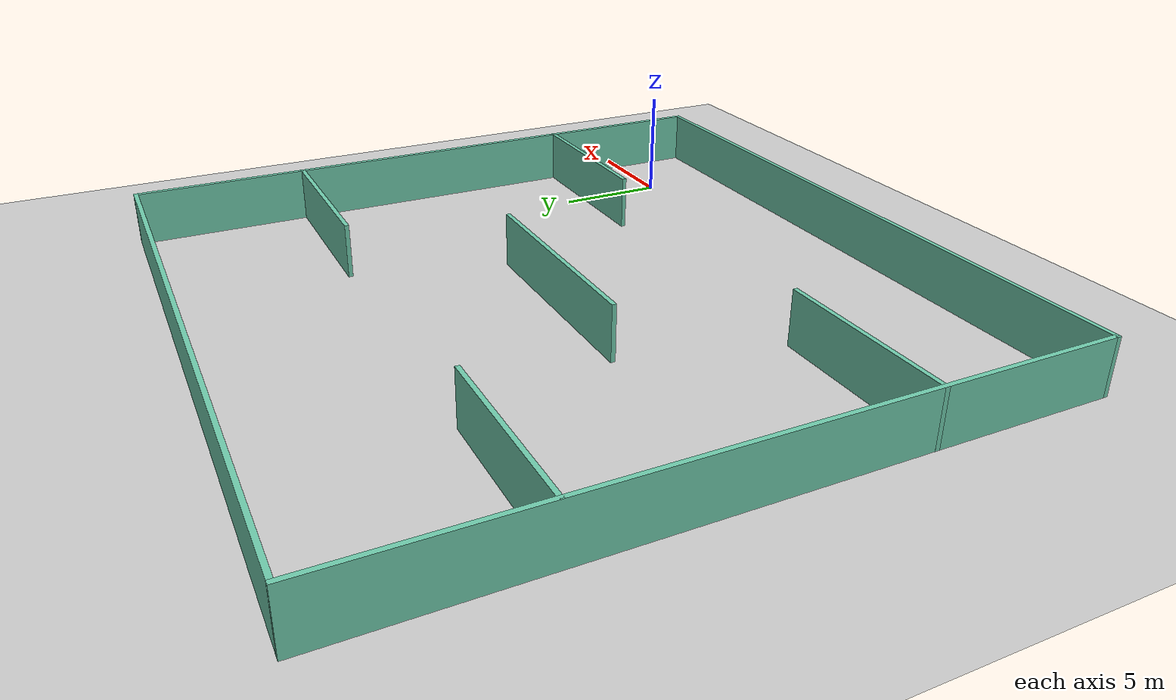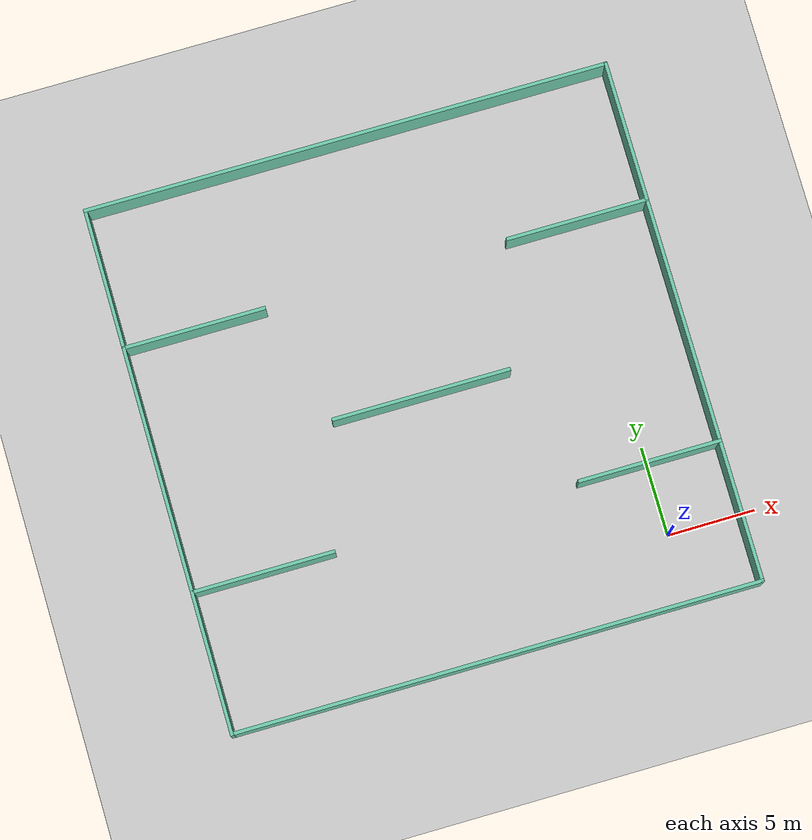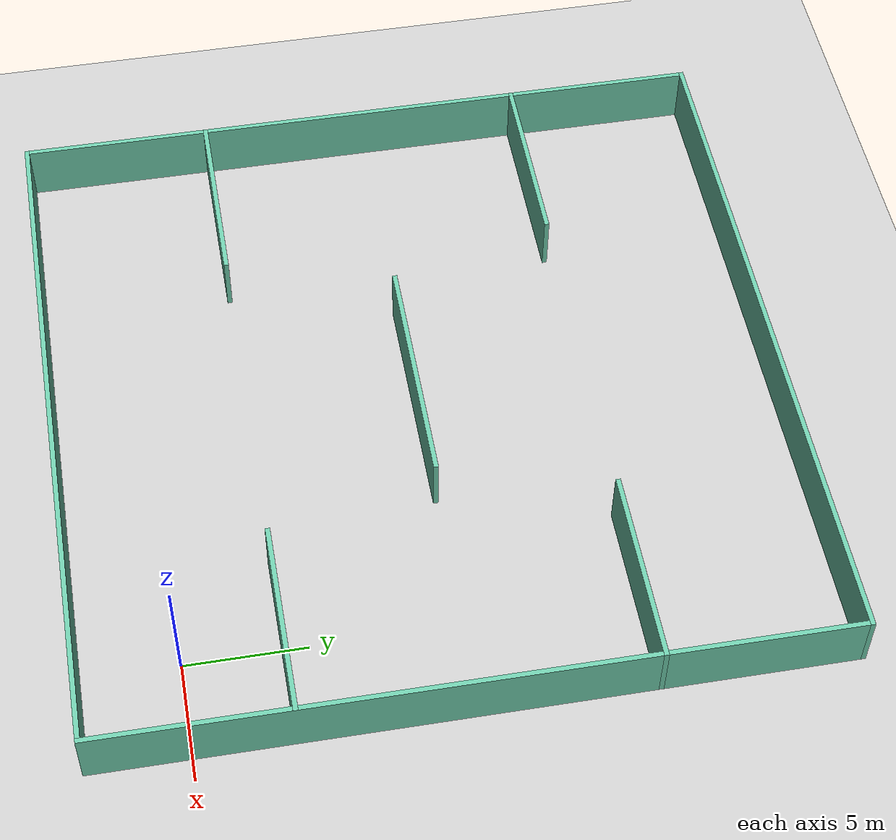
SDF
<sdf version="1.7">
 <world name="default">
  <light name="sun" type="directional">
   <pose>0 0 10 0 -0 0</pose>
   <diffuse>0.8 0.8 0.8 1</diffuse>
   <specular>0.2 0.2 0.2 1</specular>
   <attenuation>
    <range>1000</range>
    <constant>0.9</constant>
    <linear>0.01</linear>
    <quadratic>0.001</quadratic>
   </attenuation>
   <direction>-0.5 0.1 -0.9</direction>
   <spot><inner_angle>0</inner_angle><outer_angle>0</outer_angle><falloff>0</falloff></spot>
  </light>
  <model name="ground_plane">
   <static>1</static>
   <link name="link">
    <collision name="collision">
     <geometry><plane><normal>0 0 1</normal><size>100 100</size></plane></geometry>
     <surface>
      <contact><collide_bitmask>65535</collide_bitmask></contact>
      <friction><ode><mu>100</mu><mu2>50</mu2></ode></friction>
     </surface>
    </collision>
    <visual name="visual">
     <cast_shadows>0</cast_shadows>
     <geometry><plane><normal>0 0 1</normal><size>100 100</size></plane></geometry>
     <material>
      <script><uri>file://media/materials/scripts/gazebo.material</uri><name>Gazebo/Grey</name></script>
     </material>
    </visual>
   </link>
  </model>
  <gravity>0 0 -9.8</gravity>
  <magnetic_field>6e-06 2.3e-05 -4.2e-05</magnetic_field>
  <atmosphere type="adiabatic"/>
  <physics type="ode">
   <max_step_size>0.001</max_step_size>
   <real_time_factor>1</real_time_factor>
   <real_time_update_rate>1000</real_time_update_rate>
  </physics>
  <scene><ambient>0.4 0.4 0.4 1</ambient><background>0.7 0.7 0.7 1</background><shadows>1</shadows></scene>
  <spherical_coordinates>
   <surface_model>EARTH_WGS84</surface_model>
   <latitude_deg>0</latitude_deg>
   <longitude_deg>0</longitude_deg>
   <elevation>0</elevation>
   <heading_deg>0</heading_deg>
  </spherical_coordinates>
  <model name="new_sim_world">
   <pose>-11 11 0 0 -0 0</pose>
   <link name="Wall_10">
    <collision name="Wall_10_Collision">
     <geometry><box><size>8.2 0.2 2.5</size></box></geometry>
     <pose>0 0 1.25 0 -0 0</pose>
    </collision>
    <visual name="Wall_10_Visual">
     <pose>0 0 1.25 0 -0 0</pose>
     <geometry><box><size>8.2 0.2 2.5</size></box></geometry>
     <material>
      <script><uri>file://media/materials/scripts/gazebo.material</uri><name>Gazebo/Grey</name></script>
      <ambient>0.435294 0.796078 0.67451 1</ambient>
     </material>
     <meta><layer>0</layer></meta>
    </visual>
    <pose>-11 -7 0 0 -0 0</pose>
   </link>
   <link name="Wall_12">
    <collision name="Wall_12_Collision">
     <geometry><box><size>8.2 0.2 2.5</size></box></geometry>
     <pose>0 0 1.25 0 -0 0</pose>
    </collision>
    <visual name="Wall_12_Visual">
     <pose>0 0 1.25 0 -0 0</pose>
     <geometry><box><size>8.2 0.2 2.5</size></box></geometry>
     <material>
      <script><uri>file://media/materials/scripts/gazebo.material</uri><name>Gazebo/Grey</name></script>
      <ambient>0.435294 0.796078 0.67451 1</ambient>
     </material>
     <meta><layer>0</layer></meta>
    </visual>
    <pose>-11 7 0 0 -0 0</pose>
   </link>
   <link name="Wall_14">
    <collision name="Wall_14_Collision">
     <geometry><box><size>8.2 0.2 2.5</size></box></geometry>
     <pose>0 0 1.25 0 -0 0</pose>
    </collision>
    <visual name="Wall_14_Visual">
     <pose>0 0 1.25 0 -0 0</pose>
     <geometry><box><size>8.2 0.2 2.5</size></box></geometry>
     <material>
      <script><uri>file://media/materials/scripts/gazebo.material</uri><name>Gazebo/Grey</name></script>
      <ambient>0.435294 0.796078 0.67451 1</ambient>
     </material>
     <meta><layer>0</layer></meta>
    </visual>
    <pose>11 7 0 0 -0 3.14159</pose>
   </link>
   <link name="Wall_16">
    <collision name="Wall_16_Collision">
     <geometry><box><size>10.2 0.2 2.5</size></box></geometry>
     <pose>0 0 1.25 0 -0 0</pose>
    </collision>
    <visual name="Wall_16_Visual">
     <pose>0 0 1.25 0 -0 0</pose>
     <geometry><box><size>10.2 0.2 2.5</size></box></geometry>
     <material>
      <script><uri>file://media/materials/scripts/gazebo.material</uri><name>Gazebo/Grey</name></script>
      <ambient>0.435294 0.796078 0.67451 1</ambient>
     </material>
     <meta><layer>0</layer></meta>
    </visual>
    <pose>0 0 0 0 -0 3.14159</pose>
   </link>
   <link name="Wall_2">
    <collision name="Wall_2_Collision">
     <geometry><box><size>30.2 0.2 2.5</size></box></geometry>
     <pose>0 0 1.25 0 -0 0</pose>
    </collision>
    <visual name="Wall_2_Visual">
     <pose>0 0 1.25 0 -0 0</pose>
     <geometry><box><size>30.2 0.2 2.5</size></box></geometry>
     <material>
      <script><uri>file://media/materials/scripts/gazebo.material</uri><name>Gazebo/Grey</name></script>
      <ambient>0.435294 0.796078 0.67451 1</ambient>
     </material>
     <meta><layer>0</layer></meta>
    </visual>
    <pose>0 -15 0 0 -0 3.14159</pose>
   </link>
   <link name="Wall_3">
    <collision name="Wall_3_Collision">
     <geometry><box><size>30.2 0.2 2.5</size></box></geometry>
     <pose>0 0 1.25 0 -0 0</pose>
    </collision>
    <visual name="Wall_3_Visual">
     <pose>0 0 1.25 0 -0 0</pose>
     <geometry><box><size>30.2 0.2 2.5</size></box></geometry>
     <material>
      <script><uri>file://media/materials/scripts/gazebo.material</uri><name>Gazebo/Grey</name></script>
      <ambient>0.435294 0.796078 0.67451 1</ambient>
     </material>
     <meta><layer>0</layer></meta>
    </visual>
    <pose>-15 0 0 0 -0 1.5708</pose>
   </link>
   <link name="Wall_4">
    <collision name="Wall_4_Collision">
     <geometry><box><size>30.2 0.2 2.5</size></box></geometry>
     <pose>0 0 1.25 0 -0 0</pose>
    </collision>
    <visual name="Wall_4_Visual">
     <pose>0 0 1.25 0 -0 0</pose>
     <geometry><box><size>30.2 0.2 2.5</size></box></geometry>
     <material>
      <script><uri>file://media/materials/scripts/gazebo.material</uri><name>Gazebo/Grey</name></script>
      <ambient>0.435294 0.796078 0.67451 1</ambient>
     </material>
     <meta><layer>0</layer></meta>
    </visual>
    <pose>0 15 0 0 -0 0</pose>
   </link>
   <link name="Wall_6">
    <collision name="Wall_6_Collision">
     <geometry><box><size>30.2 0.2 2.5</size></box></geometry>
     <pose>0 0 1.25 0 -0 0</pose>
    </collision>
    <visual name="Wall_6_Visual">
     <pose>0 0 1.25 0 -0 0</pose>
     <geometry><box><size>30.2 0.2 2.5</size></box></geometry>
     <material>
      <script><uri>file://media/materials/scripts/gazebo.material</uri><name>Gazebo/Grey</name></script>
      <ambient>0.435294 0.796078 0.67451 1</ambient>
     </material>
     <meta><layer>0</layer></meta>
    </visual>
    <pose>15 0 0 0 -0 1.5708</pose>
   </link>
   <link name="Wall_8">
    <collision name="Wall_8_Collision">
     <geometry><box><size>8.2 0.2 2.5</size></box></geometry>
     <pose>0 0 1.25 0 -0 0</pose>
    </collision>
    <visual name="Wall_8_Visual">
     <pose>0 0 1.25 0 -0 0</pose>
     <geometry><box><size>8.2 0.2 2.5</size></box></geometry>
     <material>
      <script><uri>file://media/materials/scripts/gazebo.material</uri><name>Gazebo/Grey</name></script>
      <ambient>0.435294 0.796078 0.67451 1</ambient>
     </material>
     <meta><layer>0</layer></meta>
    </visual>
    <pose>11 -7 0 0 -0 3.14159</pose>
   </link>
   <static>1</static>
  </model>
 </world>
</sdf>
